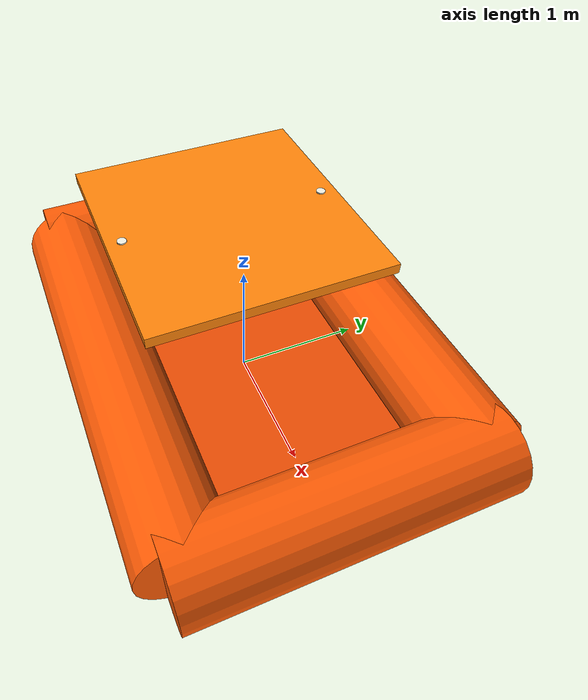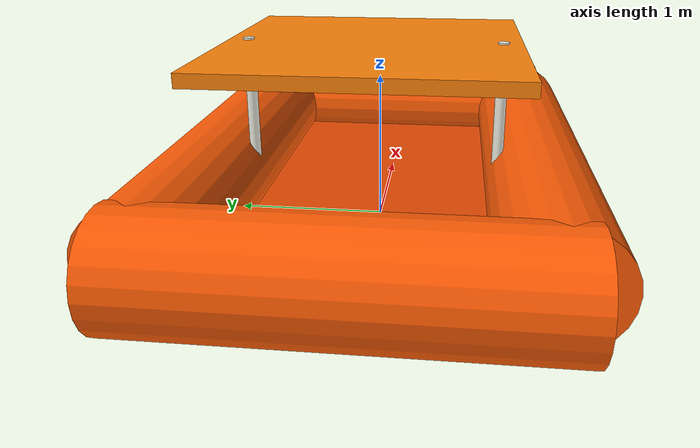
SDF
<?xml version="1.0"?>
<sdf version="1.10"><model name="life_raft"><link name="raft">
  <inertial><mass>85</mass><inertia><ixx>70</ixx><iyy>95</iyy><izz>130</izz></inertia></inertial>
  <collision name="collision"><pose>0 0 0.28 0 0 0</pose><geometry><box><size>3.6 2.4 0.55</size></box></geometry></collision>
  <visual name="floor"><pose>0 0 0.16 0 0 0</pose><geometry><box><size>3.1 1.9 0.18</size></box></geometry><material><ambient>0.55 0.15 0.01 1</ambient><diffuse>0.92 0.3 0.015 1</diffuse></material></visual>
  <visual name="tube_front"><pose>1.65 0 0.38 1.5708 0 0</pose><geometry><cylinder><radius>0.34</radius><length>2.4</length></cylinder></geometry><material><ambient>0.82 0.2 0.01 1</ambient><diffuse>1 0.36 0.02 1</diffuse><specular>0.25 0.2 0.15 1</specular></material></visual>
  <visual name="tube_rear"><pose>-1.65 0 0.38 1.5708 0 0</pose><geometry><cylinder><radius>0.34</radius><length>2.4</length></cylinder></geometry><material><ambient>0.82 0.2 0.01 1</ambient><diffuse>1 0.36 0.02 1</diffuse></material></visual>
  <visual name="tube_left"><pose>0 1.05 0.38 0 1.5708 0</pose><geometry><cylinder><radius>0.34</radius><length>3.3</length></cylinder></geometry><material><ambient>0.82 0.2 0.01 1</ambient><diffuse>1 0.36 0.02 1</diffuse></material></visual>
  <visual name="tube_right"><pose>0 -1.05 0.38 0 1.5708 0</pose><geometry><cylinder><radius>0.34</radius><length>3.3</length></cylinder></geometry><material><ambient>0.82 0.2 0.01 1</ambient><diffuse>1 0.36 0.02 1</diffuse></material></visual>
  <visual name="canopy"><pose>-0.35 0 1.25 0 0 0</pose><geometry><box><size>1.9 1.8 0.08</size></box></geometry><material><ambient>0.85 0.32 0.02 0.9</ambient><diffuse>1 0.52 0.04 0.9</diffuse></material></visual>
  <visual name="canopy_pole_left"><pose>-0.35 0.78 0.85 0 0 0</pose><geometry><cylinder><radius>0.035</radius><length>0.9</length></cylinder></geometry><material><ambient>0.8 0.8 0.75 1</ambient><diffuse>0.95 0.95 0.9 1</diffuse></material></visual>
  <visual name="canopy_pole_right"><pose>-0.35 -0.78 0.85 0 0 0</pose><geometry><cylinder><radius>0.035</radius><length>0.9</length></cylinder></geometry><material><ambient>0.8 0.8 0.75 1</ambient><diffuse>0.95 0.95 0.9 1</diffuse></material></visual>
  </link><plugin filename="libBoatWaveFollower.so" name="gz::sim::systems::BoatWaveFollower"><mean_z>0.12</mean_z><heave_amplitude>0.12</heave_amplitude><roll_amplitude>0.09</roll_amplitude><pitch_amplitude>0.075</pitch_amplitude><primary_frequency>0.9</primary_frequency><secondary_frequency>1.45</secondary_frequency></plugin></model></sdf>
